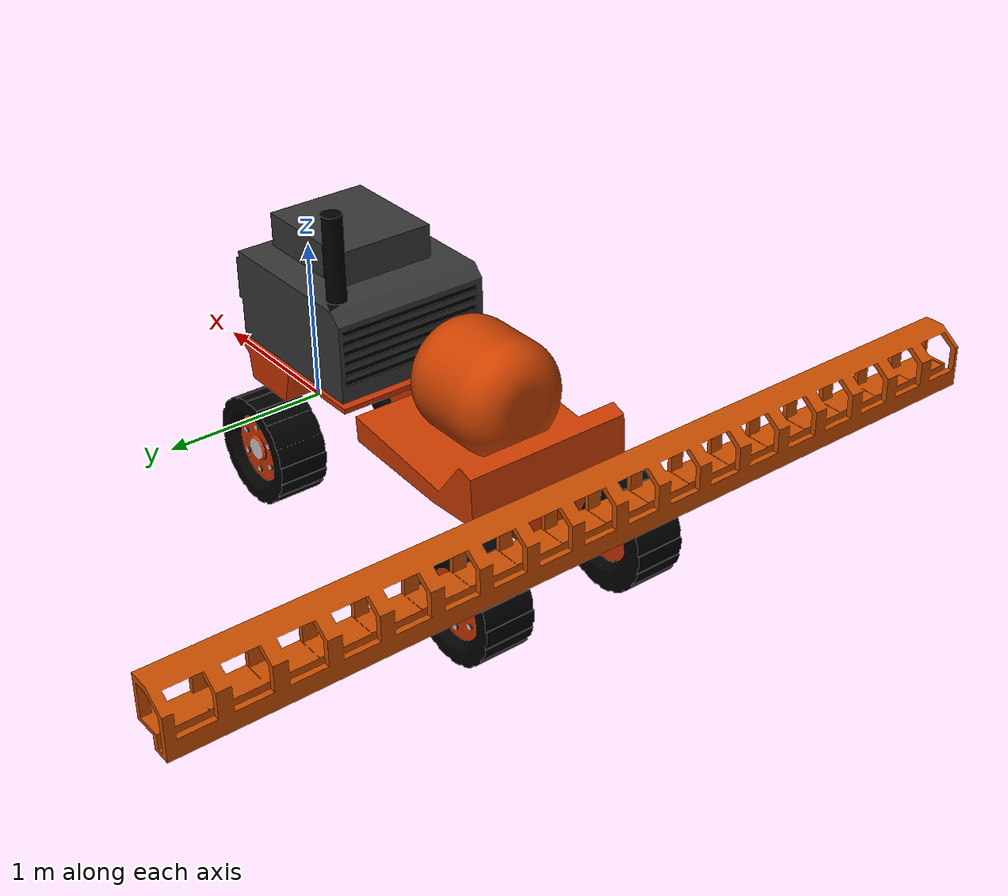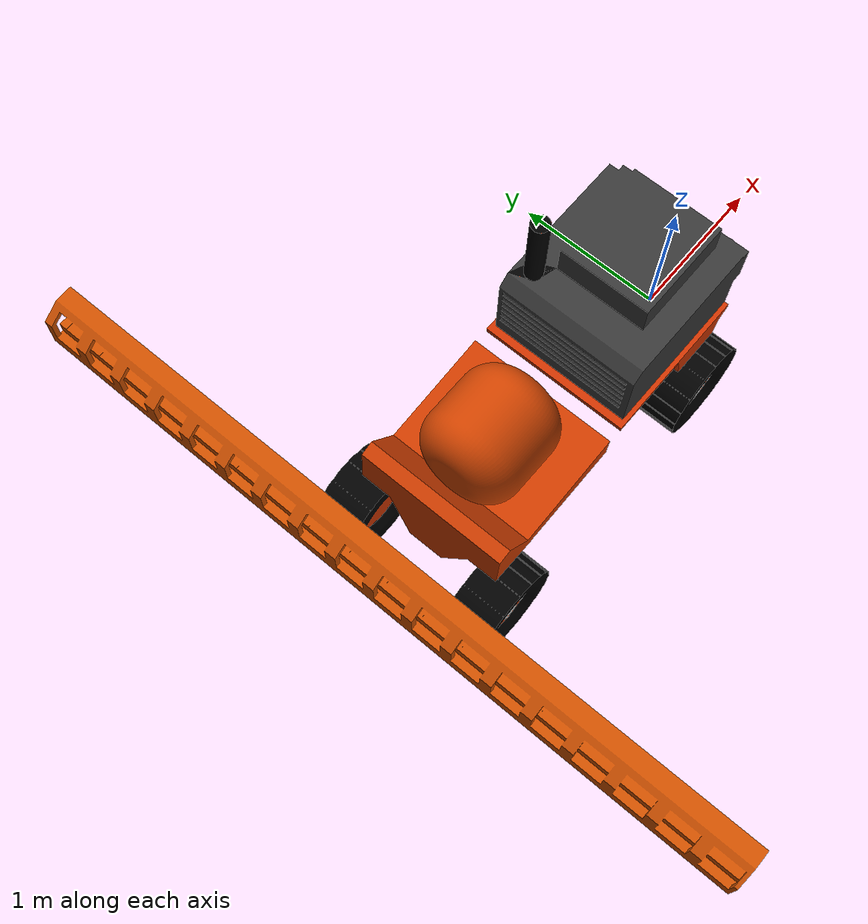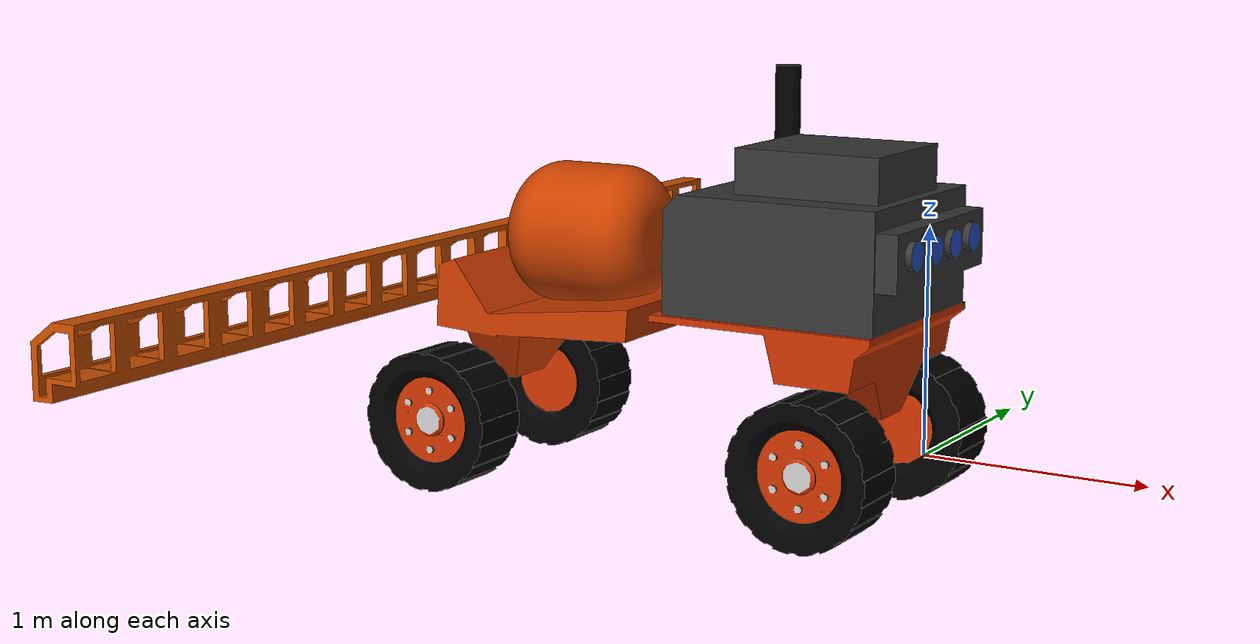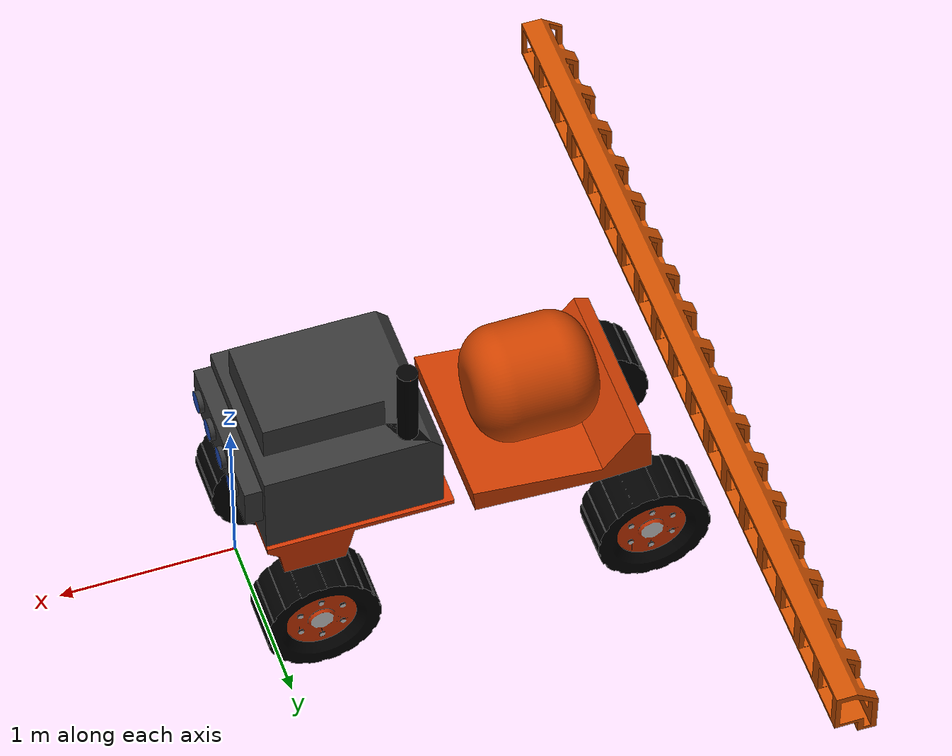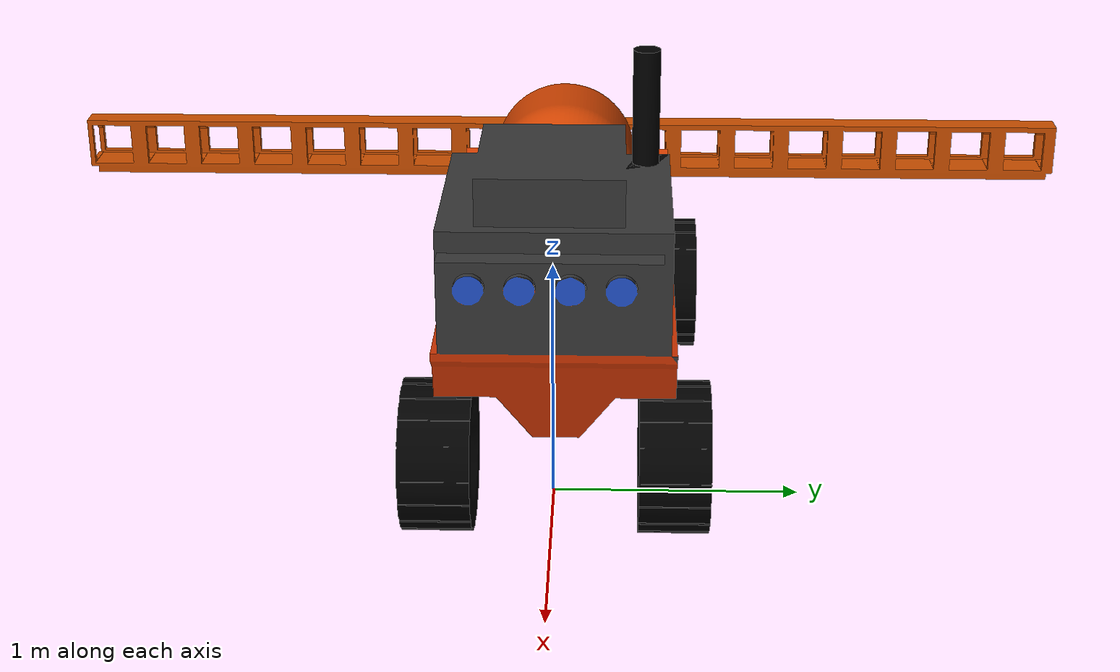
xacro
<?xml version="1.0" ?>
<robot xmlns:xacro="http://www.ros.org/wiki/xacro" name="swarm_farm">
  <xacro:include filename="$(find krytn)/robot_description/magni/inertial.xacro" />

  <link name="base_link" />

  <joint name="base_link_to_front_chasis_joint" type="fixed">
    <child link="front_chassis_link"/>
    <parent link="base_link"/>
    <origin rpy="0.0 -0.0 0.0" xyz="0.0 0.0 0.0"/>
  </joint>

  <!--Generated by CROSS, a ROS Workbench for FreeCAD (https://github.com/galou/freecad.cross)-->
  <link name="front_chassis_link">
    <visual>
      <!--front_chassis_part/Body.-->
      <origin rpy="0.0 -0.0 0.0" xyz="0.0 0.0 0.0"/>
      <geometry>
        <mesh filename="file://$(find sprayerbot)/robot_description/meshes/swarmfarmv2_front_chassis_body.dae"/>
      </geometry>
    </visual>

    <xacro:box_inertial x="1" y="1" z="1" mass="20" />

  </link>

  <link name="back_chassis_link">
    <visual>
      <!--back_chassis_part/Body001.-->
      <origin rpy="0.0 -0.0 0.0" xyz="0.0 0.0 0.0"/>
      <geometry>
        <mesh filename="file://$(find sprayerbot)/robot_description/meshes/swarmfarmv2_back_chassis_body.dae"/>
      </geometry>
    </visual>
    <visual>
      <!--back_chassis_part/Body003.-->
      <origin rpy="0.0 -0.0 0.0" xyz="0.0 0.0 0.0"/>
      <geometry>
        <mesh filename="file://$(find sprayerbot)/robot_description/meshes/swarmfarmv2_spray_liquid.dae"/>
      </geometry>
    </visual>
    <visual>
      <!--back_chassis_part/Body004.-->
      <origin rpy="0.0 -0.0 0.0" xyz="0.0 0.0 0.0"/>
      <geometry>
        <mesh filename="file://$(find sprayerbot)/robot_description/meshes/swarmfarmv2_spray_boom.dae"/>
      </geometry>
    </visual>

    <xacro:box_inertial x="1" y="1" z="1" mass="20" />
  </link>

  <xacro:macro name="wheel" params="prefix rotation">
    <link name="${prefix}_wheel_link">
      <visual>
        <!--wheel_part/Body002.-->
        <origin rpy="0.0 -0.0 ${rotation}" xyz="0.0 0.0 0.0"/>
        <geometry>
          <mesh filename="file://$(find sprayerbot)/robot_description/meshes/swarmfarmv2_wheel_body.dae"/>
        </geometry>
      </visual>
      <collision>
        <!--wheel_part/Body002.-->
        <origin rpy="${pi/2} -0.0 0.0" xyz="0.0 0.0 0.0"/>
        <geometry>
          <cylinder radius="0.3" length="0.3" />
        </geometry>
      </collision>
      <xacro:cylinder_inertial radius="0.3" length="0.3" mass="10" />
    </link>
  </xacro:macro>

  <xacro:wheel prefix="front_right" rotation="3.14" />
  <xacro:wheel prefix="front_left" rotation="0.0" />
  <xacro:wheel prefix="back_right" rotation="3.14" />
  <xacro:wheel prefix="back_left" rotation="0.0" />

  <joint name="chassis_joint" type="revolute">
    <parent link="front_chassis_link"/>
    <child link="back_chassis_link"/>
    <origin rpy="0.0 -0.0 0.0" xyz="-1.2 0.0 0.0"/>
    <axis xyz="0 0 1"/>
    <limit effort="10.0" lower="-0.7" upper="+0.7" velocity="10.0"/>
  </joint>

  <xacro:macro name="wheel_joint" params="front_rear_pos left_right_pos *origin">

    <joint name="${front_rear_pos}_${left_right_pos}_wheel_joint" type="continuous">
      <parent link="${front_rear_pos}_chassis_link"/>
      <child link="${front_rear_pos}_${left_right_pos}_wheel_link"/>
      <xacro:insert_block name="origin" />
      <axis xyz="0 1 0"/>
    </joint>

  </xacro:macro>

  <xacro:wheel_joint front_rear_pos="front" left_right_pos="right">
    <origin rpy="0.0 -0.0 0.0" xyz="-0.3 -0.5 0.0"/>
  </xacro:wheel_joint>

  <xacro:wheel_joint front_rear_pos="front" left_right_pos="left">
    <origin rpy="0.0 -0.0 0.0" xyz="-0.3 0.5 0.0"/>
  </xacro:wheel_joint>

  <xacro:wheel_joint front_rear_pos="back" left_right_pos="right">
    <origin rpy="0.0 -0.0 0.0" xyz="-1.0 -0.5 0.0"/>
  </xacro:wheel_joint>

  <xacro:wheel_joint front_rear_pos="back" left_right_pos="left">
    <origin rpy="0.0 -0.0 0.0" xyz="-1.0 0.5 0.0"/>
  </xacro:wheel_joint>

  <ros2_control name="sprayer" type="system">
    <hardware>
      <plugin>ign_ros2_control/IgnitionSystem</plugin>
    </hardware>

    <joint name="front_left_wheel_joint">
      <command_interface name="velocity">
        <param name="min">-10</param>
        <param name="max">10</param>
      </command_interface>
      <state_interface name="position"/>
      <state_interface name="velocity"/>
      <state_interface name="effort" />
    </joint>

    <joint name="front_right_wheel_joint">
      <command_interface name="velocity">
        <param name="min">-10</param>
        <param name="max">10</param>
      </command_interface>

      <state_interface name="position"/>
      <state_interface name="velocity"/>
      <state_interface name="effort" />
    </joint>

    <joint name="chassis_joint">
      <state_interface name="position" />
      <state_interface name="velocity" />
    </joint>

    <joint name="back_right_wheel_joint">
      <state_interface name="position" />
      <state_interface name="velocity" />
    </joint>

    <joint name="back_left_wheel_joint">
      <state_interface name="position" />
      <state_interface name="velocity" />
    </joint>
  </ros2_control>

  <gazebo>
    <plugin filename="gz_ros2_control-system" name="gz_ros2_control::GazeboSimROS2ControlPlugin">
      <ros>
        <remapping>/diff_drive_base_controller/cmd_vel_unstamped:=cmd_vel</remapping>
        <remapping>/controller_manager/robot_description:=/robot_description</remapping>
      </ros>
      <parameters>$(find sprayerbot)/config/diffdrive_control.yaml</parameters>
    </plugin>

    <plugin filename="gz-sim-navsat-system" name="gz::sim::systems::NavSat">
    </plugin>

    <plugin filename="gz-sim-sensors-system" name="gz::sim::systems::Sensors">
      <render_engine>ogre2</render_engine>
    </plugin>

    <plugin filename="gz-sim-imu-system" name="gz::sim::systems::Imu">
    </plugin>
  </gazebo>

  <gazebo reference="front_chassis_link">
    <sensor name="navsat" type="navsat">
      <always_on>1</always_on>
      <update_rate>1</update_rate>
      <topic>navsat</topic>
      <gz_frame_id>front_chassis_link</gz_frame_id>
    </sensor>

    <sensor name="imu" type="imu">
      <always_on>1</always_on>
      <update_rate>50</update_rate>
      <visualize>true</visualize>
      <topic>/imu/data</topic>
      <enable_metrics>true</enable_metrics>
      <gz_frame_id>front_chassis_link</gz_frame_id>
    </sensor>
  </gazebo>

</robot>
